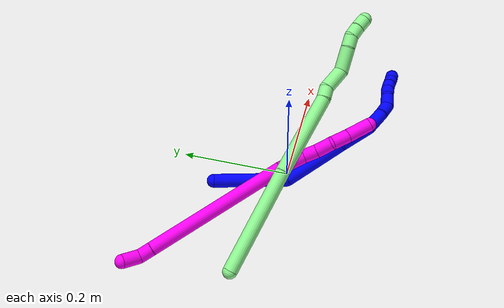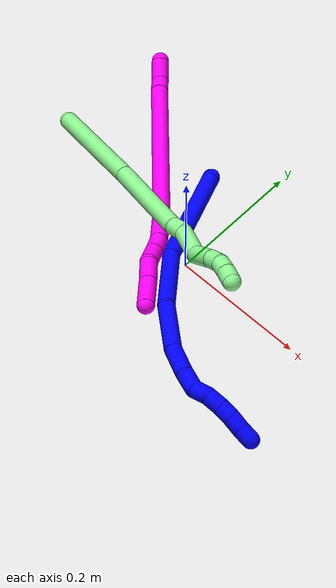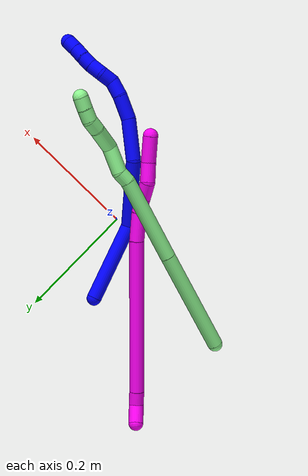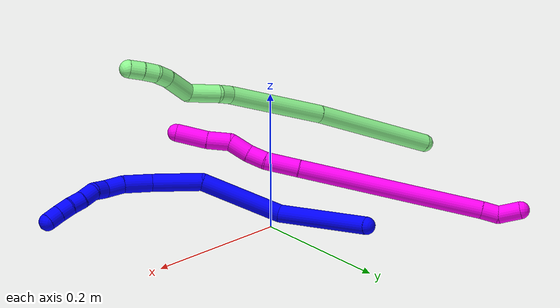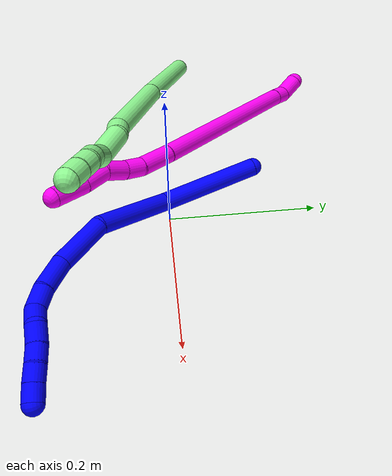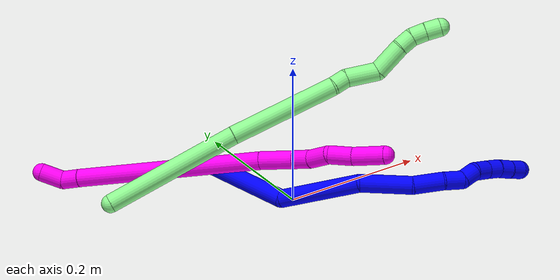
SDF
<sdf version="1.7">
 <world name="default">
  <model name="bin">
   <static>1</static>
   <link name="bottom">
    <collision name="collision-bottom">
     <pose>0 0 -0.01 0 -0 0</pose>
     <geometry><box><size>0.8 0.6 0.02</size></box></geometry>
     <surface>
      <friction><ode><mu>100</mu><mu2>100</mu2></ode></friction>
      <contact><collide_bitmask>65535</collide_bitmask></contact>
     </surface>
    </collision>
   </link>
   <link name="west_wall">
    <collision name="collision-west_wall">
     <pose>-0.41 0 0.1 0 -0 0</pose>
     <geometry><box><size>0.02 0.6 0.2</size></box></geometry>
     <surface>
      <friction><ode><mu>100</mu><mu2>100</mu2></ode></friction>
      <contact><collide_bitmask>65535</collide_bitmask></contact>
     </surface>
    </collision>
   </link>
   <link name="east_wall">
    <collision name="collision-east_wall">
     <pose>0.41 0 0.1 0 -0 0</pose>
     <geometry><box><size>0.02 0.6 0.2</size></box></geometry>
     <surface>
      <friction><ode><mu>100</mu><mu2>100</mu2></ode></friction>
      <contact><collide_bitmask>65535</collide_bitmask></contact>
     </surface>
    </collision>
   </link>
   <link name="south_wall">
    <collision name="collision-south_wall">
     <pose>0 -0.31 0.1 0 -0 0</pose>
     <geometry><box><size>0.8 0.02 0.2</size></box></geometry>
     <surface>
      <friction><ode><mu>100</mu><mu2>100</mu2></ode></friction>
      <contact><collide_bitmask>65535</collide_bitmask></contact>
     </surface>
    </collision>
   </link>
   <link name="north_wall">
    <collision name="collision-north_wall">
     <pose>0 0.31 0.1 0 -0 0</pose>
     <geometry><box><size>0.8 0.02 0.2</size></box></geometry>
     <surface>
      <friction><ode><mu>100</mu><mu2>100</mu2></ode></friction>
      <contact><collide_bitmask>65535</collide_bitmask></contact>
     </surface>
    </collision>
   </link>
  </model>
  <model name="1">
   <static>0</static>
   <link name="1">
    <collision name="collision-cylinder-e_1_1_4">
     <pose>0.018435 -0.016506 0.063716 0.253477 0.273086 0.035011</pose>
     <geometry><cylinder><radius>0.0125</radius><length>0.136704</length></cylinder></geometry>
     <surface>
      <friction><ode><mu>1.16</mu><mu2>1.16</mu2><slip1>0</slip1><slip2>0</slip2></ode></friction>
      <contact><ode><kp>1e+06</kp><kd>1</kd><max_vel>0</max_vel><min_depth>0.001</min_depth></ode></contact>
     </surface>
    </collision>
    <visual name="visual-cylinder-e_1_1_4">
     <pose>0.018435 -0.016506 0.063716 0.253477 0.273086 0.035011</pose>
     <geometry><cylinder><radius>0.0125</radius><length>0.136704</length></cylinder></geometry>
     <material><ambient>0 0 1 1</ambient></material>
    </visual>
    <collision name="collision-cylinder-e_2_4_5">
     <pose>0.079863 -0.051674 0.162984 0.483408 0.81955 0.213349</pose>
     <geometry><cylinder><radius>0.0125</radius><length>0.117656</length></cylinder></geometry>
     <surface>
      <friction><ode><mu>1.16</mu><mu2>1.16</mu2><slip1>0</slip1><slip2>0</slip2></ode></friction>
      <contact><ode><kp>1e+06</kp><kd>1</kd><max_vel>0</max_vel><min_depth>0.001</min_depth></ode></contact>
     </surface>
    </collision>
    <visual name="visual-cylinder-e_2_4_5">
     <pose>0.079863 -0.051674 0.162984 0.483408 0.81955 0.213349</pose>
     <geometry><cylinder><radius>0.0125</radius><length>0.117656</length></cylinder></geometry>
     <material><ambient>0 0 1 1</ambient></material>
    </visual>
    <collision name="collision-cylinder-e_3_5_6">
     <pose>0.140013 -0.092873 0.219641 0.818195 0.507182 0.223793</pose>
     <geometry><cylinder><radius>0.0125</radius><length>0.070643</length></cylinder></geometry>
     <surface>
      <friction><ode><mu>1.16</mu><mu2>1.16</mu2><slip1>0</slip1><slip2>0</slip2></ode></friction>
      <contact><ode><kp>1e+06</kp><kd>1</kd><max_vel>0</max_vel><min_depth>0.001</min_depth></ode></contact>
     </surface>
    </collision>
    <visual name="visual-cylinder-e_3_5_6">
     <pose>0.140013 -0.092873 0.219641 0.818195 0.507182 0.223793</pose>
     <geometry><cylinder><radius>0.0125</radius><length>0.070643</length></cylinder></geometry>
     <material><ambient>0 0 1 1</ambient></material>
    </visual>
    <collision name="collision-cylinder-e_4_6_7">
     <pose>0.168802 -0.130742 0.248644 1.09509 0.593368 0.368568</pose>
     <geometry><cylinder><radius>0.0125</radius><length>0.041606</length></cylinder></geometry>
     <surface>
      <friction><ode><mu>1.16</mu><mu2>1.16</mu2><slip1>0</slip1><slip2>0</slip2></ode></friction>
      <contact><ode><kp>1e+06</kp><kd>1</kd><max_vel>0</max_vel><min_depth>0.001</min_depth></ode></contact>
     </surface>
    </collision>
    <visual name="visual-cylinder-e_4_6_7">
     <pose>0.168802 -0.130742 0.248644 1.09509 0.593368 0.368568</pose>
     <geometry><cylinder><radius>0.0125</radius><length>0.041606</length></cylinder></geometry>
     <material><ambient>0 0 1 1</ambient></material>
    </visual>
    <collision name="collision-cylinder-e_5_7_8">
     <pose>0.186038 -0.157914 0.260597 1.24089 0.420997 0.30302</pose>
     <geometry><cylinder><radius>0.0125</radius><length>0.027425</length></cylinder></geometry>
     <surface>
      <friction><ode><mu>1.16</mu><mu2>1.16</mu2><slip1>0</slip1><slip2>0</slip2></ode></friction>
      <contact><ode><kp>1e+06</kp><kd>1</kd><max_vel>0</max_vel><min_depth>0.001</min_depth></ode></contact>
     </surface>
    </collision>
    <visual name="visual-cylinder-e_5_7_8">
     <pose>0.186038 -0.157914 0.260597 1.24089 0.420997 0.30302</pose>
     <geometry><cylinder><radius>0.0125</radius><length>0.027425</length></cylinder></geometry>
     <material><ambient>0 0 1 1</ambient></material>
    </visual>
    <collision name="collision-cylinder-e_6_8_9">
     <pose>0.198264 -0.178785 0.26249 1.80569 0.619489 0.770776</pose>
     <geometry><cylinder><radius>0.0125</radius><length>0.022811</length></cylinder></geometry>
     <surface>
      <friction><ode><mu>1.16</mu><mu2>1.16</mu2><slip1>0</slip1><slip2>0</slip2></ode></friction>
      <contact><ode><kp>1e+06</kp><kd>1</kd><max_vel>0</max_vel><min_depth>0.001</min_depth></ode></contact>
     </surface>
    </collision>
    <visual name="visual-cylinder-e_6_8_9">
     <pose>0.198264 -0.178785 0.26249 1.80569 0.619489 0.770776</pose>
     <geometry><cylinder><radius>0.0125</radius><length>0.022811</length></cylinder></geometry>
     <material><ambient>0 0 1 1</ambient></material>
    </visual>
    <collision name="collision-cylinder-e_7_9_10">
     <pose>0.207304 -0.199022 0.259741 1.62315 0.212196 0.223515</pose>
     <geometry><cylinder><radius>0.0125</radius><length>0.022956</length></cylinder></geometry>
     <surface>
      <friction><ode><mu>1.16</mu><mu2>1.16</mu2><slip1>0</slip1><slip2>0</slip2></ode></friction>
      <contact><ode><kp>1e+06</kp><kd>1</kd><max_vel>0</max_vel><min_depth>0.001</min_depth></ode></contact>
     </surface>
    </collision>
    <visual name="visual-cylinder-e_7_9_10">
     <pose>0.207304 -0.199022 0.259741 1.62315 0.212196 0.223515</pose>
     <geometry><cylinder><radius>0.0125</radius><length>0.022956</length></cylinder></geometry>
     <material><ambient>0 0 1 1</ambient></material>
    </visual>
    <collision name="collision-cylinder-e_8_10_11">
     <pose>0.212574 -0.219854 0.259788 1.505 0.287565 0.269469</pose>
     <geometry><cylinder><radius>0.0125</radius><length>0.020121</length></cylinder></geometry>
     <surface>
      <friction><ode><mu>1.16</mu><mu2>1.16</mu2><slip1>0</slip1><slip2>0</slip2></ode></friction>
      <contact><ode><kp>1e+06</kp><kd>1</kd><max_vel>0</max_vel><min_depth>0.001</min_depth></ode></contact>
     </surface>
    </collision>
    <visual name="visual-cylinder-e_8_10_11">
     <pose>0.212574 -0.219854 0.259788 1.505 0.287565 0.269469</pose>
     <geometry><cylinder><radius>0.0125</radius><length>0.020121</length></cylinder></geometry>
     <material><ambient>0 0 1 1</ambient></material>
    </visual>
    <collision name="collision-cylinder-e_9_11_12">
     <pose>0.217035 -0.239263 0.261845 1.42637 0.161154 0.139488</pose>
     <geometry><cylinder><radius>0.0125</radius><length>0.020031</length></cylinder></geometry>
     <surface>
      <friction><ode><mu>1.16</mu><mu2>1.16</mu2><slip1>0</slip1><slip2>0</slip2></ode></friction>
      <contact><ode><kp>1e+06</kp><kd>1</kd><max_vel>0</max_vel><min_depth>0.001</min_depth></ode></contact>
     </surface>
    </collision>
    <visual name="visual-cylinder-e_9_11_12">
     <pose>0.217035 -0.239263 0.261845 1.42637 0.161154 0.139488</pose>
     <geometry><cylinder><radius>0.0125</radius><length>0.020031</length></cylinder></geometry>
     <material><ambient>0 0 1 1</ambient></material>
    </visual>
    <collision name="collision-cylinder-e_10_12_2">
     <pose>0.220205 -0.258921 0.263984 1.49839 0.15664 0.14573</pose>
     <geometry><cylinder><radius>0.0125</radius><length>0.020046</length></cylinder></geometry>
     <surface>
      <friction><ode><mu>1.16</mu><mu2>1.16</mu2><slip1>0</slip1><slip2>0</slip2></ode></friction>
      <contact><ode><kp>1e+06</kp><kd>1</kd><max_vel>0</max_vel><min_depth>0.001</min_depth></ode></contact>
     </surface>
    </collision>
    <visual name="visual-cylinder-e_10_12_2">
     <pose>0.220205 -0.258921 0.263984 1.49839 0.15664 0.14573</pose>
     <geometry><cylinder><radius>0.0125</radius><length>0.020046</length></cylinder></geometry>
     <material><ambient>0 0 1 1</ambient></material>
    </visual>
    <collision name="collision-sphere-2">
     <pose>0.221769 -0.268795 0.264701 0 -0 0</pose>
     <geometry><sphere><radius>0.0125</radius></sphere></geometry>
     <surface>
      <friction><ode><mu>1.16</mu><mu2>1.16</mu2><slip1>0</slip1><slip2>0</slip2></ode></friction>
      <contact><ode><kp>1e+06</kp><kd>1</kd><max_vel>0</max_vel><min_depth>0.001</min_depth></ode></contact>
     </surface>
    </collision>
    <visual name="visual-sphere-2">
     <pose>0.221769 -0.268795 0.264701 0 -0 0</pose>
     <geometry><sphere><radius>0.0125</radius></sphere></geometry>
     <material><ambient>0 0 1 1</ambient></material>
    </visual>
    <collision name="collision-sphere-12">
     <pose>0.218642 -0.249046 0.263268 0 -0 0</pose>
     <geometry><sphere><radius>0.0125</radius></sphere></geometry>
     <surface>
      <friction><ode><mu>1.16</mu><mu2>1.16</mu2><slip1>0</slip1><slip2>0</slip2></ode></friction>
      <contact><ode><kp>1e+06</kp><kd>1</kd><max_vel>0</max_vel><min_depth>0.001</min_depth></ode></contact>
     </surface>
    </collision>
    <visual name="visual-sphere-12">
     <pose>0.218642 -0.249046 0.263268 0 -0 0</pose>
     <geometry><sphere><radius>0.0125</radius></sphere></geometry>
     <material><ambient>0 0 1 1</ambient></material>
    </visual>
    <collision name="collision-sphere-11">
     <pose>0.215428 -0.229481 0.260423 0 -0 0</pose>
     <geometry><sphere><radius>0.0125</radius></sphere></geometry>
     <surface>
      <friction><ode><mu>1.16</mu><mu2>1.16</mu2><slip1>0</slip1><slip2>0</slip2></ode></friction>
      <contact><ode><kp>1e+06</kp><kd>1</kd><max_vel>0</max_vel><min_depth>0.001</min_depth></ode></contact>
     </surface>
    </collision>
    <visual name="visual-sphere-11">
     <pose>0.215428 -0.229481 0.260423 0 -0 0</pose>
     <geometry><sphere><radius>0.0125</radius></sphere></geometry>
     <material><ambient>0 0 1 1</ambient></material>
    </visual>
    <collision name="collision-sphere-10">
     <pose>0.209721 -0.210227 0.259154 0 -0 0</pose>
     <geometry><sphere><radius>0.0125</radius></sphere></geometry>
     <surface>
      <friction><ode><mu>1.16</mu><mu2>1.16</mu2><slip1>0</slip1><slip2>0</slip2></ode></friction>
      <contact><ode><kp>1e+06</kp><kd>1</kd><max_vel>0</max_vel><min_depth>0.001</min_depth></ode></contact>
     </surface>
    </collision>
    <visual name="visual-sphere-10">
     <pose>0.209721 -0.210227 0.259154 0 -0 0</pose>
     <geometry><sphere><radius>0.0125</radius></sphere></geometry>
     <material><ambient>0 0 1 1</ambient></material>
    </visual>
    <collision name="collision-sphere-9">
     <pose>0.204886 -0.187817 0.260328 0 -0 0</pose>
     <geometry><sphere><radius>0.0125</radius></sphere></geometry>
     <surface>
      <friction><ode><mu>1.16</mu><mu2>1.16</mu2><slip1>0</slip1><slip2>0</slip2></ode></friction>
      <contact><ode><kp>1e+06</kp><kd>1</kd><max_vel>0</max_vel><min_depth>0.001</min_depth></ode></contact>
     </surface>
    </collision>
    <visual name="visual-sphere-9">
     <pose>0.204886 -0.187817 0.260328 0 -0 0</pose>
     <geometry><sphere><radius>0.0125</radius></sphere></geometry>
     <material><ambient>0 0 1 1</ambient></material>
    </visual>
    <collision name="collision-sphere-4">
     <pose>0.03687 -0.033011 0.127432 0 -0 0</pose>
     <geometry><sphere><radius>0.0125</radius></sphere></geometry>
     <surface>
      <friction><ode><mu>1.16</mu><mu2>1.16</mu2><slip1>0</slip1><slip2>0</slip2></ode></friction>
      <contact><ode><kp>1e+06</kp><kd>1</kd><max_vel>0</max_vel><min_depth>0.001</min_depth></ode></contact>
     </surface>
    </collision>
    <visual name="visual-sphere-4">
     <pose>0.03687 -0.033011 0.127432 0 -0 0</pose>
     <geometry><sphere><radius>0.0125</radius></sphere></geometry>
     <material><ambient>0 0 1 1</ambient></material>
    </visual>
    <collision name="collision-sphere-1">
     <geometry><sphere><radius>0.0125</radius></sphere></geometry>
     <surface>
      <friction><ode><mu>1.16</mu><mu2>1.16</mu2><slip1>0</slip1><slip2>0</slip2></ode></friction>
      <contact><ode><kp>1e+06</kp><kd>1</kd><max_vel>0</max_vel><min_depth>0.001</min_depth></ode></contact>
     </surface>
    </collision>
    <visual name="visual-sphere-1">
     <geometry><sphere><radius>0.0125</radius></sphere></geometry>
     <material><ambient>0 0 1 1</ambient></material>
    </visual>
    <collision name="collision-sphere-8">
     <pose>0.191642 -0.169754 0.264651 0 -0 0</pose>
     <geometry><sphere><radius>0.0125</radius></sphere></geometry>
     <surface>
      <friction><ode><mu>1.16</mu><mu2>1.16</mu2><slip1>0</slip1><slip2>0</slip2></ode></friction>
      <contact><ode><kp>1e+06</kp><kd>1</kd><max_vel>0</max_vel><min_depth>0.001</min_depth></ode></contact>
     </surface>
    </collision>
    <visual name="visual-sphere-8">
     <pose>0.191642 -0.169754 0.264651 0 -0 0</pose>
     <geometry><sphere><radius>0.0125</radius></sphere></geometry>
     <material><ambient>0 0 1 1</ambient></material>
    </visual>
    <collision name="collision-sphere-5">
     <pose>0.122857 -0.070337 0.198536 0 -0 0</pose>
     <geometry><sphere><radius>0.0125</radius></sphere></geometry>
     <surface>
      <friction><ode><mu>1.16</mu><mu2>1.16</mu2><slip1>0</slip1><slip2>0</slip2></ode></friction>
      <contact><ode><kp>1e+06</kp><kd>1</kd><max_vel>0</max_vel><min_depth>0.001</min_depth></ode></contact>
     </surface>
    </collision>
    <visual name="visual-sphere-5">
     <pose>0.122857 -0.070337 0.198536 0 -0 0</pose>
     <geometry><sphere><radius>0.0125</radius></sphere></geometry>
     <material><ambient>0 0 1 1</ambient></material>
    </visual>
    <collision name="collision-sphere-6">
     <pose>0.157169 -0.115409 0.240745 0 -0 0</pose>
     <geometry><sphere><radius>0.0125</radius></sphere></geometry>
     <surface>
      <friction><ode><mu>1.16</mu><mu2>1.16</mu2><slip1>0</slip1><slip2>0</slip2></ode></friction>
      <contact><ode><kp>1e+06</kp><kd>1</kd><max_vel>0</max_vel><min_depth>0.001</min_depth></ode></contact>
     </surface>
    </collision>
    <visual name="visual-sphere-6">
     <pose>0.157169 -0.115409 0.240745 0 -0 0</pose>
     <geometry><sphere><radius>0.0125</radius></sphere></geometry>
     <material><ambient>0 0 1 1</ambient></material>
    </visual>
    <collision name="collision-sphere-7">
     <pose>0.180434 -0.146074 0.256542 0 -0 0</pose>
     <geometry><sphere><radius>0.0125</radius></sphere></geometry>
     <surface>
      <friction><ode><mu>1.16</mu><mu2>1.16</mu2><slip1>0</slip1><slip2>0</slip2></ode></friction>
      <contact><ode><kp>1e+06</kp><kd>1</kd><max_vel>0</max_vel><min_depth>0.001</min_depth></ode></contact>
     </surface>
    </collision>
    <visual name="visual-sphere-7">
     <pose>0.180434 -0.146074 0.256542 0 -0 0</pose>
     <geometry><sphere><radius>0.0125</radius></sphere></geometry>
     <material><ambient>0 0 1 1</ambient></material>
    </visual>
    <inertial>
     <pose>0.112506 -0.095443 0.177218 0 -0 0</pose>
     <mass>0.5</mass>
     <inertia>
      <ixx>0.000403</ixx>
      <ixy>0</ixy>
      <ixz>0</ixz>
      <iyy>0.000392</iyy>
      <iyz>0</iyz>
      <izz>-3.1e-05</izz>
     </inertia>
    </inertial>
   </link>
   <pose>-0.066191 0.123442 0.023631 2.06251 -1.05296 -0.45205</pose>
  </model>
  <model name="10">
   <static>0</static>
   <link name="10">
    <collision name="collision-cylinder-e_1_1_4">
     <pose>-0.003813 -0.002454 -0.015338 2.98292 -0.240748 -1.97867</pose>
     <geometry><cylinder><radius>0.0125</radius><length>0.031988</length></cylinder></geometry>
     <surface>
      <friction><ode><mu>1.16</mu><mu2>1.16</mu2><slip1>0</slip1><slip2>0</slip2></ode></friction>
      <contact><ode><kp>1e+06</kp><kd>1</kd><max_vel>0</max_vel><min_depth>0.001</min_depth></ode></contact>
     </surface>
    </collision>
    <visual name="visual-cylinder-e_1_1_4">
     <pose>-0.003813 -0.002454 -0.015338 2.98292 -0.240748 -1.97867</pose>
     <geometry><cylinder><radius>0.0125</radius><length>0.031988</length></cylinder></geometry>
     <material><ambient>1 0 0.964706 1</ambient></material>
    </visual>
    <collision name="collision-cylinder-e_2_4_5">
     <pose>-0.004193 -0.007508 -0.042245 2.9206 0.28186 1.8142</pose>
     <geometry><cylinder><radius>0.0125</radius><length>0.024691</length></cylinder></geometry>
     <surface>
      <friction><ode><mu>1.16</mu><mu2>1.16</mu2><slip1>0</slip1><slip2>0</slip2></ode></friction>
      <contact><ode><kp>1e+06</kp><kd>1</kd><max_vel>0</max_vel><min_depth>0.001</min_depth></ode></contact>
     </surface>
    </collision>
    <visual name="visual-cylinder-e_2_4_5">
     <pose>-0.004193 -0.007508 -0.042245 2.9206 0.28186 1.8142</pose>
     <geometry><cylinder><radius>0.0125</radius><length>0.024691</length></cylinder></geometry>
     <material><ambient>1 0 0.964706 1</ambient></material>
    </visual>
    <collision name="collision-cylinder-e_3_5_6">
     <pose>0.030351 -0.033036 -0.178971 2.9604 0.239798 1.84942</pose>
     <geometry><cylinder><radius>0.0125</radius><length>0.261974</length></cylinder></geometry>
     <surface>
      <friction><ode><mu>1.16</mu><mu2>1.16</mu2><slip1>0</slip1><slip2>0</slip2></ode></friction>
      <contact><ode><kp>1e+06</kp><kd>1</kd><max_vel>0</max_vel><min_depth>0.001</min_depth></ode></contact>
     </surface>
    </collision>
    <visual name="visual-cylinder-e_3_5_6">
     <pose>0.030351 -0.033036 -0.178971 2.9604 0.239798 1.84942</pose>
     <geometry><cylinder><radius>0.0125</radius><length>0.261974</length></cylinder></geometry>
     <material><ambient>1 0 0.964706 1</ambient></material>
    </visual>
    <collision name="collision-cylinder-e_4_6_7">
     <pose>0.066192 -0.061936 -0.326956 2.88577 0.197877 1.31459</pose>
     <geometry><cylinder><radius>0.0125</radius><length>0.048133</length></cylinder></geometry>
     <surface>
      <friction><ode><mu>1.16</mu><mu2>1.16</mu2><slip1>0</slip1><slip2>0</slip2></ode></friction>
      <contact><ode><kp>1e+06</kp><kd>1</kd><max_vel>0</max_vel><min_depth>0.001</min_depth></ode></contact>
     </surface>
    </collision>
    <visual name="visual-cylinder-e_4_6_7">
     <pose>0.066192 -0.061936 -0.326956 2.88577 0.197877 1.31459</pose>
     <geometry><cylinder><radius>0.0125</radius><length>0.048133</length></cylinder></geometry>
     <material><ambient>1 0 0.964706 1</ambient></material>
    </visual>
    <collision name="collision-cylinder-e_5_7_8">
     <pose>0.074496 -0.073476 -0.360792 2.67321 0.281887 1.07307</pose>
     <geometry><cylinder><radius>0.0125</radius><length>0.025685</length></cylinder></geometry>
     <surface>
      <friction><ode><mu>1.16</mu><mu2>1.16</mu2><slip1>0</slip1><slip2>0</slip2></ode></friction>
      <contact><ode><kp>1e+06</kp><kd>1</kd><max_vel>0</max_vel><min_depth>0.001</min_depth></ode></contact>
     </surface>
    </collision>
    <visual name="visual-cylinder-e_5_7_8">
     <pose>0.074496 -0.073476 -0.360792 2.67321 0.281887 1.07307</pose>
     <geometry><cylinder><radius>0.0125</radius><length>0.025685</length></cylinder></geometry>
     <material><ambient>1 0 0.964706 1</ambient></material>
    </visual>
    <collision name="collision-cylinder-e_6_8_9">
     <pose>0.08471 -0.085429 -0.383728 2.6502 0.456318 1.49397</pose>
     <geometry><cylinder><radius>0.0125</radius><length>0.030143</length></cylinder></geometry>
     <surface>
      <friction><ode><mu>1.16</mu><mu2>1.16</mu2><slip1>0</slip1><slip2>0</slip2></ode></friction>
      <contact><ode><kp>1e+06</kp><kd>1</kd><max_vel>0</max_vel><min_depth>0.001</min_depth></ode></contact>
     </surface>
    </collision>
    <visual name="visual-cylinder-e_6_8_9">
     <pose>0.08471 -0.085429 -0.383728 2.6502 0.456318 1.49397</pose>
     <geometry><cylinder><radius>0.0125</radius><length>0.030143</length></cylinder></geometry>
     <material><ambient>1 0 0.964706 1</ambient></material>
    </visual>
    <collision name="collision-cylinder-e_7_9_10">
     <pose>0.09258 -0.095127 -0.411646 2.9372 0.075138 0.702598</pose>
     <geometry><cylinder><radius>0.0125</radius><length>0.03275</length></cylinder></geometry>
     <surface>
      <friction><ode><mu>1.16</mu><mu2>1.16</mu2><slip1>0</slip1><slip2>0</slip2></ode></friction>
      <contact><ode><kp>1e+06</kp><kd>1</kd><max_vel>0</max_vel><min_depth>0.001</min_depth></ode></contact>
     </surface>
    </collision>
    <visual name="visual-cylinder-e_7_9_10">
     <pose>0.09258 -0.095127 -0.411646 2.9372 0.075138 0.702598</pose>
     <geometry><cylinder><radius>0.0125</radius><length>0.03275</length></cylinder></geometry>
     <material><ambient>1 0 0.964706 1</ambient></material>
    </visual>
    <collision name="collision-cylinder-e_8_10_2">
     <pose>0.098464 -0.103964 -0.448751 2.8858 0.210123 1.37363</pose>
     <geometry><cylinder><radius>0.0125</radius><length>0.044635</length></cylinder></geometry>
     <surface>
      <friction><ode><mu>1.16</mu><mu2>1.16</mu2><slip1>0</slip1><slip2>0</slip2></ode></friction>
      <contact><ode><kp>1e+06</kp><kd>1</kd><max_vel>0</max_vel><min_depth>0.001</min_depth></ode></contact>
     </surface>
    </collision>
    <visual name="visual-cylinder-e_8_10_2">
     <pose>0.098464 -0.103964 -0.448751 2.8858 0.210123 1.37363</pose>
     <geometry><cylinder><radius>0.0125</radius><length>0.044635</length></cylinder></geometry>
     <material><ambient>1 0 0.964706 1</ambient></material>
    </visual>
    <collision name="collision-sphere-2">
     <pose>0.103119 -0.109486 -0.469868 0 -0 0</pose>
     <geometry><sphere><radius>0.0125</radius></sphere></geometry>
     <surface>
      <friction><ode><mu>1.16</mu><mu2>1.16</mu2><slip1>0</slip1><slip2>0</slip2></ode></friction>
      <contact><ode><kp>1e+06</kp><kd>1</kd><max_vel>0</max_vel><min_depth>0.001</min_depth></ode></contact>
     </surface>
    </collision>
    <visual name="visual-sphere-2">
     <pose>0.103119 -0.109486 -0.469868 0 -0 0</pose>
     <geometry><sphere><radius>0.0125</radius></sphere></geometry>
     <material><ambient>1 0 0.964706 1</ambient></material>
    </visual>
    <collision name="collision-sphere-10">
     <pose>0.09381 -0.098442 -0.427635 0 -0 0</pose>
     <geometry><sphere><radius>0.0125</radius></sphere></geometry>
     <surface>
      <friction><ode><mu>1.16</mu><mu2>1.16</mu2><slip1>0</slip1><slip2>0</slip2></ode></friction>
      <contact><ode><kp>1e+06</kp><kd>1</kd><max_vel>0</max_vel><min_depth>0.001</min_depth></ode></contact>
     </surface>
    </collision>
    <visual name="visual-sphere-10">
     <pose>0.09381 -0.098442 -0.427635 0 -0 0</pose>
     <geometry><sphere><radius>0.0125</radius></sphere></geometry>
     <material><ambient>1 0 0.964706 1</ambient></material>
    </visual>
    <collision name="collision-sphere-9">
     <pose>0.091351 -0.091813 -0.395657 0 -0 0</pose>
     <geometry><sphere><radius>0.0125</radius></sphere></geometry>
     <surface>
      <friction><ode><mu>1.16</mu><mu2>1.16</mu2><slip1>0</slip1><slip2>0</slip2></ode></friction>
      <contact><ode><kp>1e+06</kp><kd>1</kd><max_vel>0</max_vel><min_depth>0.001</min_depth></ode></contact>
     </surface>
    </collision>
    <visual name="visual-sphere-9">
     <pose>0.091351 -0.091813 -0.395657 0 -0 0</pose>
     <geometry><sphere><radius>0.0125</radius></sphere></geometry>
     <material><ambient>1 0 0.964706 1</ambient></material>
    </visual>
    <collision name="collision-sphere-4">
     <pose>-0.007627 -0.004908 -0.030675 0 -0 0</pose>
     <geometry><sphere><radius>0.0125</radius></sphere></geometry>
     <surface>
      <friction><ode><mu>1.16</mu><mu2>1.16</mu2><slip1>0</slip1><slip2>0</slip2></ode></friction>
      <contact><ode><kp>1e+06</kp><kd>1</kd><max_vel>0</max_vel><min_depth>0.001</min_depth></ode></contact>
     </surface>
    </collision>
    <visual name="visual-sphere-4">
     <pose>-0.007627 -0.004908 -0.030675 0 -0 0</pose>
     <geometry><sphere><radius>0.0125</radius></sphere></geometry>
     <material><ambient>1 0 0.964706 1</ambient></material>
    </visual>
    <collision name="collision-sphere-1">
     <geometry><sphere><radius>0.0125</radius></sphere></geometry>
     <surface>
      <friction><ode><mu>1.16</mu><mu2>1.16</mu2><slip1>0</slip1><slip2>0</slip2></ode></friction>
      <contact><ode><kp>1e+06</kp><kd>1</kd><max_vel>0</max_vel><min_depth>0.001</min_depth></ode></contact>
     </surface>
    </collision>
    <visual name="visual-sphere-1">
     <geometry><sphere><radius>0.0125</radius></sphere></geometry>
     <material><ambient>1 0 0.964706 1</ambient></material>
    </visual>
    <collision name="collision-sphere-8">
     <pose>0.078068 -0.079045 -0.371799 0 -0 0</pose>
     <geometry><sphere><radius>0.0125</radius></sphere></geometry>
     <surface>
      <friction><ode><mu>1.16</mu><mu2>1.16</mu2><slip1>0</slip1><slip2>0</slip2></ode></friction>
      <contact><ode><kp>1e+06</kp><kd>1</kd><max_vel>0</max_vel><min_depth>0.001</min_depth></ode></contact>
     </surface>
    </collision>
    <visual name="visual-sphere-8">
     <pose>0.078068 -0.079045 -0.371799 0 -0 0</pose>
     <geometry><sphere><radius>0.0125</radius></sphere></geometry>
     <material><ambient>1 0 0.964706 1</ambient></material>
    </visual>
    <collision name="collision-sphere-5">
     <pose>-0.000759 -0.010107 -0.053815 0 -0 0</pose>
     <geometry><sphere><radius>0.0125</radius></sphere></geometry>
     <surface>
      <friction><ode><mu>1.16</mu><mu2>1.16</mu2><slip1>0</slip1><slip2>0</slip2></ode></friction>
      <contact><ode><kp>1e+06</kp><kd>1</kd><max_vel>0</max_vel><min_depth>0.001</min_depth></ode></contact>
     </surface>
    </collision>
    <visual name="visual-sphere-5">
     <pose>-0.000759 -0.010107 -0.053815 0 -0 0</pose>
     <geometry><sphere><radius>0.0125</radius></sphere></geometry>
     <material><ambient>1 0 0.964706 1</ambient></material>
    </visual>
    <collision name="collision-sphere-6">
     <pose>0.061461 -0.055965 -0.304127 0 -0 0</pose>
     <geometry><sphere><radius>0.0125</radius></sphere></geometry>
     <surface>
      <friction><ode><mu>1.16</mu><mu2>1.16</mu2><slip1>0</slip1><slip2>0</slip2></ode></friction>
      <contact><ode><kp>1e+06</kp><kd>1</kd><max_vel>0</max_vel><min_depth>0.001</min_depth></ode></contact>
     </surface>
    </collision>
    <visual name="visual-sphere-6">
     <pose>0.061461 -0.055965 -0.304127 0 -0 0</pose>
     <geometry><sphere><radius>0.0125</radius></sphere></geometry>
     <material><ambient>1 0 0.964706 1</ambient></material>
    </visual>
    <collision name="collision-sphere-7">
     <pose>0.070924 -0.067907 -0.349785 0 -0 0</pose>
     <geometry><sphere><radius>0.0125</radius></sphere></geometry>
     <surface>
      <friction><ode><mu>1.16</mu><mu2>1.16</mu2><slip1>0</slip1><slip2>0</slip2></ode></friction>
      <contact><ode><kp>1e+06</kp><kd>1</kd><max_vel>0</max_vel><min_depth>0.001</min_depth></ode></contact>
     </surface>
    </collision>
    <visual name="visual-sphere-7">
     <pose>0.070924 -0.067907 -0.349785 0 -0 0</pose>
     <geometry><sphere><radius>0.0125</radius></sphere></geometry>
     <material><ambient>1 0 0.964706 1</ambient></material>
    </visual>
    <inertial>
     <pose>0.045611 -0.048236 -0.237005 0 -0 0</pose>
     <mass>0.5</mass>
     <inertia>
      <ixx>0.001047</ixx>
      <ixy>0</ixy>
      <ixz>0</ixz>
      <iyy>0.001892</iyy>
      <iyz>0</iyz>
      <izz>-0.000128</izz>
     </inertia>
    </inertial>
   </link>
   <pose>-0.265937 0.226235 0.020363 -1.17783 -1.47317 0.540614</pose>
  </model>
  <model name="13">
   <static>0</static>
   <link name="13">
    <collision name="collision-cylinder-e_1_1_4">
     <pose>0.034179 -0.02999 -0.080249 2.78396 0.379606 1.63175</pose>
     <geometry><cylinder><radius>0.0125</radius><length>0.184473</length></cylinder></geometry>
     <surface>
      <friction><ode><mu>1.16</mu><mu2>1.16</mu2><slip1>0</slip1><slip2>0</slip2></ode></friction>
      <contact><ode><kp>1e+06</kp><kd>1</kd><max_vel>0</max_vel><min_depth>0.001</min_depth></ode></contact>
     </surface>
    </collision>
    <visual name="visual-cylinder-e_1_1_4">
     <pose>0.034179 -0.02999 -0.080249 2.78396 0.379606 1.63175</pose>
     <geometry><cylinder><radius>0.0125</radius><length>0.184473</length></cylinder></geometry>
     <material><ambient>0.564706 0.984314 0.572549 1</ambient></material>
    </visual>
    <collision name="collision-cylinder-e_2_4_5">
     <pose>0.092199 -0.082641 -0.226206 2.80949 0.330446 1.56569</pose>
     <geometry><cylinder><radius>0.0125</radius><length>0.146961</length></cylinder></geometry>
     <surface>
      <friction><ode><mu>1.16</mu><mu2>1.16</mu2><slip1>0</slip1><slip2>0</slip2></ode></friction>
      <contact><ode><kp>1e+06</kp><kd>1</kd><max_vel>0</max_vel><min_depth>0.001</min_depth></ode></contact>
     </surface>
    </collision>
    <visual name="visual-cylinder-e_2_4_5">
     <pose>0.092199 -0.082641 -0.226206 2.80949 0.330446 1.56569</pose>
     <geometry><cylinder><radius>0.0125</radius><length>0.146961</length></cylinder></geometry>
     <material><ambient>0.564706 0.984314 0.572549 1</ambient></material>
    </visual>
    <collision name="collision-cylinder-e_3_5_6">
     <pose>0.12034 -0.106133 -0.301285 3.05315 0.428609 2.74043</pose>
     <geometry><cylinder><radius>0.0125</radius><length>0.020688</length></cylinder></geometry>
     <surface>
      <friction><ode><mu>1.16</mu><mu2>1.16</mu2><slip1>0</slip1><slip2>0</slip2></ode></friction>
      <contact><ode><kp>1e+06</kp><kd>1</kd><max_vel>0</max_vel><min_depth>0.001</min_depth></ode></contact>
     </surface>
    </collision>
    <visual name="visual-cylinder-e_3_5_6">
     <pose>0.12034 -0.106133 -0.301285 3.05315 0.428609 2.74043</pose>
     <geometry><cylinder><radius>0.0125</radius><length>0.020688</length></cylinder></geometry>
     <material><ambient>0.564706 0.984314 0.572549 1</ambient></material>
    </visual>
    <collision name="collision-cylinder-e_4_6_7">
     <pose>0.126549 -0.113825 -0.331274 2.82037 0.087694 0.528964</pose>
     <geometry><cylinder><radius>0.0125</radius><length>0.043627</length></cylinder></geometry>
     <surface>
      <friction><ode><mu>1.16</mu><mu2>1.16</mu2><slip1>0</slip1><slip2>0</slip2></ode></friction>
      <contact><ode><kp>1e+06</kp><kd>1</kd><max_vel>0</max_vel><min_depth>0.001</min_depth></ode></contact>
     </surface>
    </collision>
    <visual name="visual-cylinder-e_4_6_7">
     <pose>0.126549 -0.113825 -0.331274 2.82037 0.087694 0.528964</pose>
     <geometry><cylinder><radius>0.0125</radius><length>0.043627</length></cylinder></geometry>
     <material><ambient>0.564706 0.984314 0.572549 1</ambient></material>
    </visual>
    <collision name="collision-cylinder-e_5_7_8">
     <pose>0.142299 -0.127832 -0.366776 2.69394 0.697639 2.02307</pose>
     <geometry><cylinder><radius>0.0125</radius><length>0.043087</length></cylinder></geometry>
     <surface>
      <friction><ode><mu>1.16</mu><mu2>1.16</mu2><slip1>0</slip1><slip2>0</slip2></ode></friction>
      <contact><ode><kp>1e+06</kp><kd>1</kd><max_vel>0</max_vel><min_depth>0.001</min_depth></ode></contact>
     </surface>
    </collision>
    <visual name="visual-cylinder-e_5_7_8">
     <pose>0.142299 -0.127832 -0.366776 2.69394 0.697639 2.02307</pose>
     <geometry><cylinder><radius>0.0125</radius><length>0.043087</length></cylinder></geometry>
     <material><ambient>0.564706 0.984314 0.572549 1</ambient></material>
    </visual>
    <collision name="collision-cylinder-e_6_8_9">
     <pose>0.161861 -0.137531 -0.38998 2.84387 0.581549 2.21248</pose>
     <geometry><cylinder><radius>0.0125</radius><length>0.020832</length></cylinder></geometry>
     <surface>
      <friction><ode><mu>1.16</mu><mu2>1.16</mu2><slip1>0</slip1><slip2>0</slip2></ode></friction>
      <contact><ode><kp>1e+06</kp><kd>1</kd><max_vel>0</max_vel><min_depth>0.001</min_depth></ode></contact>
     </surface>
    </collision>
    <visual name="visual-cylinder-e_6_8_9">
     <pose>0.161861 -0.137531 -0.38998 2.84387 0.581549 2.21248</pose>
     <geometry><cylinder><radius>0.0125</radius><length>0.020832</length></cylinder></geometry>
     <material><ambient>0.564706 0.984314 0.572549 1</ambient></material>
    </visual>
    <collision name="collision-cylinder-e_7_9_10">
     <pose>0.170044 -0.143895 -0.407232 2.73829 0.248276 1.09604</pose>
     <geometry><cylinder><radius>0.0125</radius><length>0.020037</length></cylinder></geometry>
     <surface>
      <friction><ode><mu>1.16</mu><mu2>1.16</mu2><slip1>0</slip1><slip2>0</slip2></ode></friction>
      <contact><ode><kp>1e+06</kp><kd>1</kd><max_vel>0</max_vel><min_depth>0.001</min_depth></ode></contact>
     </surface>
    </collision>
    <visual name="visual-cylinder-e_7_9_10">
     <pose>0.170044 -0.143895 -0.407232 2.73829 0.248276 1.09604</pose>
     <geometry><cylinder><radius>0.0125</radius><length>0.020037</length></cylinder></geometry>
     <material><ambient>0.564706 0.984314 0.572549 1</ambient></material>
    </visual>
    <collision name="collision-cylinder-e_8_10_2">
     <pose>0.174155 -0.151631 -0.425377 2.73889 0.163198 0.762145</pose>
     <geometry><cylinder><radius>0.0125</radius><length>0.020296</length></cylinder></geometry>
     <surface>
      <friction><ode><mu>1.16</mu><mu2>1.16</mu2><slip1>0</slip1><slip2>0</slip2></ode></friction>
      <contact><ode><kp>1e+06</kp><kd>1</kd><max_vel>0</max_vel><min_depth>0.001</min_depth></ode></contact>
     </surface>
    </collision>
    <visual name="visual-cylinder-e_8_10_2">
     <pose>0.174155 -0.151631 -0.425377 2.73889 0.163198 0.762145</pose>
     <geometry><cylinder><radius>0.0125</radius><length>0.020296</length></cylinder></geometry>
     <material><ambient>0.564706 0.984314 0.572549 1</ambient></material>
    </visual>
    <collision name="collision-sphere-2">
     <pose>0.175804 -0.155555 -0.434589 0 -0 0</pose>
     <geometry><sphere><radius>0.0125</radius></sphere></geometry>
     <surface>
      <friction><ode><mu>1.16</mu><mu2>1.16</mu2><slip1>0</slip1><slip2>0</slip2></ode></friction>
      <contact><ode><kp>1e+06</kp><kd>1</kd><max_vel>0</max_vel><min_depth>0.001</min_depth></ode></contact>
     </surface>
    </collision>
    <visual name="visual-sphere-2">
     <pose>0.175804 -0.155555 -0.434589 0 -0 0</pose>
     <geometry><sphere><radius>0.0125</radius></sphere></geometry>
     <material><ambient>0.564706 0.984314 0.572549 1</ambient></material>
    </visual>
    <collision name="collision-sphere-10">
     <pose>0.172506 -0.147707 -0.416165 0 -0 0</pose>
     <geometry><sphere><radius>0.0125</radius></sphere></geometry>
     <surface>
      <friction><ode><mu>1.16</mu><mu2>1.16</mu2><slip1>0</slip1><slip2>0</slip2></ode></friction>
      <contact><ode><kp>1e+06</kp><kd>1</kd><max_vel>0</max_vel><min_depth>0.001</min_depth></ode></contact>
     </surface>
    </collision>
    <visual name="visual-sphere-10">
     <pose>0.172506 -0.147707 -0.416165 0 -0 0</pose>
     <geometry><sphere><radius>0.0125</radius></sphere></geometry>
     <material><ambient>0.564706 0.984314 0.572549 1</ambient></material>
    </visual>
    <collision name="collision-sphere-9">
     <pose>0.167582 -0.140084 -0.3983 0 -0 0</pose>
     <geometry><sphere><radius>0.0125</radius></sphere></geometry>
     <surface>
      <friction><ode><mu>1.16</mu><mu2>1.16</mu2><slip1>0</slip1><slip2>0</slip2></ode></friction>
      <contact><ode><kp>1e+06</kp><kd>1</kd><max_vel>0</max_vel><min_depth>0.001</min_depth></ode></contact>
     </surface>
    </collision>
    <visual name="visual-sphere-9">
     <pose>0.167582 -0.140084 -0.3983 0 -0 0</pose>
     <geometry><sphere><radius>0.0125</radius></sphere></geometry>
     <material><ambient>0.564706 0.984314 0.572549 1</ambient></material>
    </visual>
    <collision name="collision-sphere-4">
     <pose>0.068357 -0.05998 -0.160499 0 -0 0</pose>
     <geometry><sphere><radius>0.0125</radius></sphere></geometry>
     <surface>
      <friction><ode><mu>1.16</mu><mu2>1.16</mu2><slip1>0</slip1><slip2>0</slip2></ode></friction>
      <contact><ode><kp>1e+06</kp><kd>1</kd><max_vel>0</max_vel><min_depth>0.001</min_depth></ode></contact>
     </surface>
    </collision>
    <visual name="visual-sphere-4">
     <pose>0.068357 -0.05998 -0.160499 0 -0 0</pose>
     <geometry><sphere><radius>0.0125</radius></sphere></geometry>
     <material><ambient>0.564706 0.984314 0.572549 1</ambient></material>
    </visual>
    <collision name="collision-sphere-1">
     <geometry><sphere><radius>0.0125</radius></sphere></geometry>
     <surface>
      <friction><ode><mu>1.16</mu><mu2>1.16</mu2><slip1>0</slip1><slip2>0</slip2></ode></friction>
      <contact><ode><kp>1e+06</kp><kd>1</kd><max_vel>0</max_vel><min_depth>0.001</min_depth></ode></contact>
     </surface>
    </collision>
    <visual name="visual-sphere-1">
     <geometry><sphere><radius>0.0125</radius></sphere></geometry>
     <material><ambient>0.564706 0.984314 0.572549 1</ambient></material>
    </visual>
    <collision name="collision-sphere-8">
     <pose>0.156139 -0.134978 -0.381659 0 -0 0</pose>
     <geometry><sphere><radius>0.0125</radius></sphere></geometry>
     <surface>
      <friction><ode><mu>1.16</mu><mu2>1.16</mu2><slip1>0</slip1><slip2>0</slip2></ode></friction>
      <contact><ode><kp>1e+06</kp><kd>1</kd><max_vel>0</max_vel><min_depth>0.001</min_depth></ode></contact>
     </surface>
    </collision>
    <visual name="visual-sphere-8">
     <pose>0.156139 -0.134978 -0.381659 0 -0 0</pose>
     <geometry><sphere><radius>0.0125</radius></sphere></geometry>
     <material><ambient>0.564706 0.984314 0.572549 1</ambient></material>
    </visual>
    <collision name="collision-sphere-5">
     <pose>0.116041 -0.105302 -0.291913 0 -0 0</pose>
     <geometry><sphere><radius>0.0125</radius></sphere></geometry>
     <surface>
      <friction><ode><mu>1.16</mu><mu2>1.16</mu2><slip1>0</slip1><slip2>0</slip2></ode></friction>
      <contact><ode><kp>1e+06</kp><kd>1</kd><max_vel>0</max_vel><min_depth>0.001</min_depth></ode></contact>
     </surface>
    </collision>
    <visual name="visual-sphere-5">
     <pose>0.116041 -0.105302 -0.291913 0 -0 0</pose>
     <geometry><sphere><radius>0.0125</radius></sphere></geometry>
     <material><ambient>0.564706 0.984314 0.572549 1</ambient></material>
    </visual>
    <collision name="collision-sphere-6">
     <pose>0.124639 -0.106964 -0.310656 0 -0 0</pose>
     <geometry><sphere><radius>0.0125</radius></sphere></geometry>
     <surface>
      <friction><ode><mu>1.16</mu><mu2>1.16</mu2><slip1>0</slip1><slip2>0</slip2></ode></friction>
      <contact><ode><kp>1e+06</kp><kd>1</kd><max_vel>0</max_vel><min_depth>0.001</min_depth></ode></contact>
     </surface>
    </collision>
    <visual name="visual-sphere-6">
     <pose>0.124639 -0.106964 -0.310656 0 -0 0</pose>
     <geometry><sphere><radius>0.0125</radius></sphere></geometry>
     <material><ambient>0.564706 0.984314 0.572549 1</ambient></material>
    </visual>
    <collision name="collision-sphere-7">
     <pose>0.12846 -0.120685 -0.351893 0 -0 0</pose>
     <geometry><sphere><radius>0.0125</radius></sphere></geometry>
     <surface>
      <friction><ode><mu>1.16</mu><mu2>1.16</mu2><slip1>0</slip1><slip2>0</slip2></ode></friction>
      <contact><ode><kp>1e+06</kp><kd>1</kd><max_vel>0</max_vel><min_depth>0.001</min_depth></ode></contact>
     </surface>
    </collision>
    <visual name="visual-sphere-7">
     <pose>0.12846 -0.120685 -0.351893 0 -0 0</pose>
     <geometry><sphere><radius>0.0125</radius></sphere></geometry>
     <material><ambient>0.564706 0.984314 0.572549 1</ambient></material>
    </visual>
    <inertial>
     <pose>0.08862 -0.078345 -0.218906 0 -0 0</pose>
     <mass>0.5</mass>
     <inertia>
      <ixx>0.000751</ixx>
      <ixy>0</ixy>
      <ixz>0</ixz>
      <iyy>0.000875</iyy>
      <iyz>0</iyz>
      <izz>-6.3e-05</izz>
     </inertia>
    </inertial>
   </link>
   <pose>-0.264668 0.035176 0.061655 -1.40608 -1.04382 1.24052</pose>
  </model>
 </world>
</sdf>
